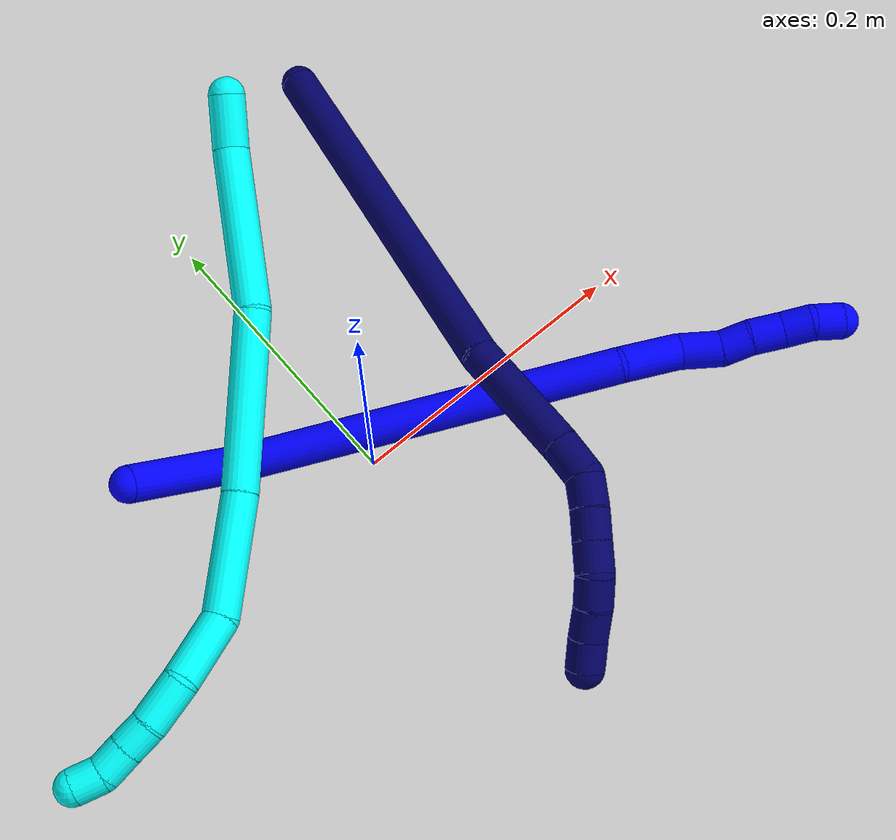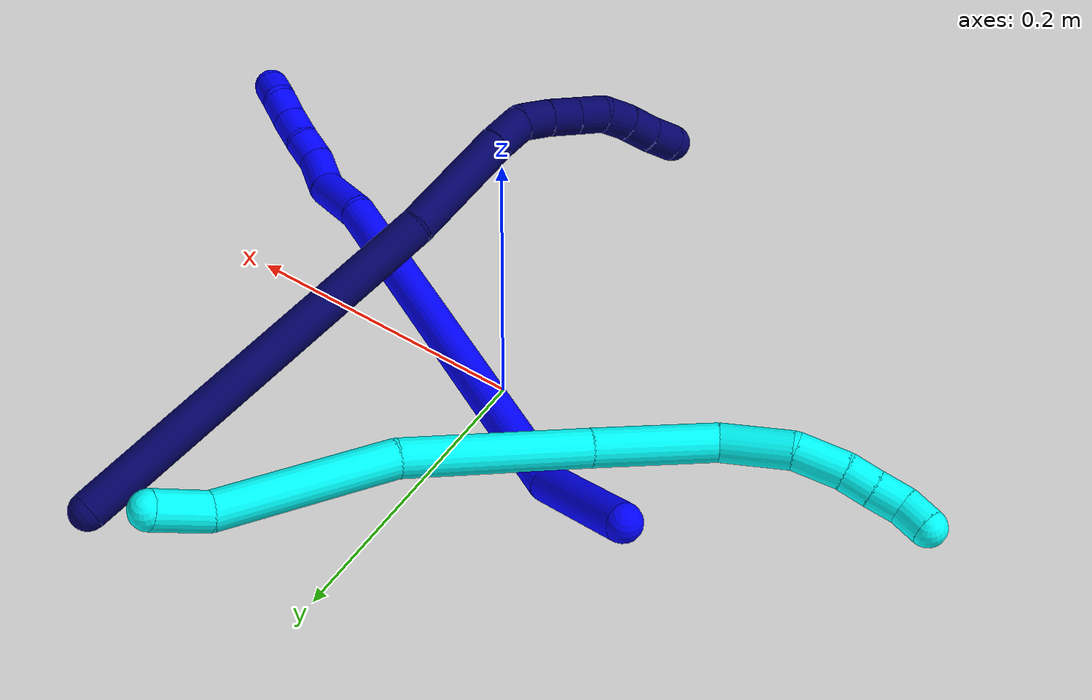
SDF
<sdf version="1.7">
 <world name="default">
  <model name="1">
   <static>0</static>
   <link name="1">
    <collision name="collision-cylinder-e_1_1_4">
     <pose>0.028472 -0.011102 -0.025605 2.73249 0.7954 2.22417</pose>
     <geometry><cylinder><radius>0.0125</radius><length>0.079738</length></cylinder></geometry>
     <surface>
      <friction><ode><mu>1.16</mu><mu2>1.16</mu2><slip1>0</slip1><slip2>0</slip2></ode></friction>
      <contact><ode><kp>1e+06</kp><kd>1</kd><max_vel>0</max_vel><min_depth>0.001</min_depth></ode></contact>
     </surface>
    </collision>
    <visual name="visual-cylinder-e_1_1_4">
     <pose>0.028472 -0.011102 -0.025605 2.73249 0.7954 2.22417</pose>
     <geometry><cylinder><radius>0.0125</radius><length>0.079738</length></cylinder></geometry>
     <material><ambient>0 0 1 1</ambient></material>
    </visual>
    <collision name="collision-cylinder-e_2_4_5">
     <pose>0.171823 -0.080918 -0.075096 1.95716 1.06659 1.44048</pose>
     <geometry><cylinder><radius>0.0125</radius><length>0.262411</length></cylinder></geometry>
     <surface>
      <friction><ode><mu>1.16</mu><mu2>1.16</mu2><slip1>0</slip1><slip2>0</slip2></ode></friction>
      <contact><ode><kp>1e+06</kp><kd>1</kd><max_vel>0</max_vel><min_depth>0.001</min_depth></ode></contact>
     </surface>
    </collision>
    <visual name="visual-cylinder-e_2_4_5">
     <pose>0.171823 -0.080918 -0.075096 1.95716 1.06659 1.44048</pose>
     <geometry><cylinder><radius>0.0125</radius><length>0.262411</length></cylinder></geometry>
     <material><ambient>0 0 1 1</ambient></material>
    </visual>
    <collision name="collision-cylinder-e_3_5_6">
     <pose>0.304836 -0.147415 -0.109065 2.48422 0.958458 1.97995</pose>
     <geometry><cylinder><radius>0.0125</radius><length>0.044323</length></cylinder></geometry>
     <surface>
      <friction><ode><mu>1.16</mu><mu2>1.16</mu2><slip1>0</slip1><slip2>0</slip2></ode></friction>
      <contact><ode><kp>1e+06</kp><kd>1</kd><max_vel>0</max_vel><min_depth>0.001</min_depth></ode></contact>
     </surface>
    </collision>
    <visual name="visual-cylinder-e_3_5_6">
     <pose>0.304836 -0.147415 -0.109065 2.48422 0.958458 1.97995</pose>
     <geometry><cylinder><radius>0.0125</radius><length>0.044323</length></cylinder></geometry>
     <material><ambient>0 0 1 1</ambient></material>
    </visual>
    <collision name="collision-cylinder-e_4_6_7">
     <pose>0.334343 -0.164205 -0.121771 1.85416 0.88107 1.12193</pose>
     <geometry><cylinder><radius>0.0125</radius><length>0.029482</length></cylinder></geometry>
     <surface>
      <friction><ode><mu>1.16</mu><mu2>1.16</mu2><slip1>0</slip1><slip2>0</slip2></ode></friction>
      <contact><ode><kp>1e+06</kp><kd>1</kd><max_vel>0</max_vel><min_depth>0.001</min_depth></ode></contact>
     </surface>
    </collision>
    <visual name="visual-cylinder-e_4_6_7">
     <pose>0.334343 -0.164205 -0.121771 1.85416 0.88107 1.12193</pose>
     <geometry><cylinder><radius>0.0125</radius><length>0.029482</length></cylinder></geometry>
     <material><ambient>0 0 1 1</ambient></material>
    </visual>
    <collision name="collision-cylinder-e_5_7_8">
     <pose>0.355304 -0.177204 -0.124596 1.6213 1.17583 1.2229</pose>
     <geometry><cylinder><radius>0.0125</radius><length>0.020779</length></cylinder></geometry>
     <surface>
      <friction><ode><mu>1.16</mu><mu2>1.16</mu2><slip1>0</slip1><slip2>0</slip2></ode></friction>
      <contact><ode><kp>1e+06</kp><kd>1</kd><max_vel>0</max_vel><min_depth>0.001</min_depth></ode></contact>
     </surface>
    </collision>
    <visual name="visual-cylinder-e_5_7_8">
     <pose>0.355304 -0.177204 -0.124596 1.6213 1.17583 1.2229</pose>
     <geometry><cylinder><radius>0.0125</radius><length>0.020779</length></cylinder></geometry>
     <material><ambient>0 0 1 1</ambient></material>
    </visual>
    <collision name="collision-cylinder-e_6_8_9">
     <pose>0.374611 -0.18667 -0.126417 1.85838 1.03967 1.3075</pose>
     <geometry><cylinder><radius>0.0125</radius><length>0.022541</length></cylinder></geometry>
     <surface>
      <friction><ode><mu>1.16</mu><mu2>1.16</mu2><slip1>0</slip1><slip2>0</slip2></ode></friction>
      <contact><ode><kp>1e+06</kp><kd>1</kd><max_vel>0</max_vel><min_depth>0.001</min_depth></ode></contact>
     </surface>
    </collision>
    <visual name="visual-cylinder-e_6_8_9">
     <pose>0.374611 -0.18667 -0.126417 1.85838 1.03967 1.3075</pose>
     <geometry><cylinder><radius>0.0125</radius><length>0.022541</length></cylinder></geometry>
     <material><ambient>0 0 1 1</ambient></material>
    </visual>
    <collision name="collision-cylinder-e_7_9_10">
     <pose>0.393242 -0.19724 -0.128309 1.62428 1.05084 1.09789</pose>
     <geometry><cylinder><radius>0.0125</radius><length>0.020541</length></cylinder></geometry>
     <surface>
      <friction><ode><mu>1.16</mu><mu2>1.16</mu2><slip1>0</slip1><slip2>0</slip2></ode></friction>
      <contact><ode><kp>1e+06</kp><kd>1</kd><max_vel>0</max_vel><min_depth>0.001</min_depth></ode></contact>
     </surface>
    </collision>
    <visual name="visual-cylinder-e_7_9_10">
     <pose>0.393242 -0.19724 -0.128309 1.62428 1.05084 1.09789</pose>
     <geometry><cylinder><radius>0.0125</radius><length>0.020541</length></cylinder></geometry>
     <material><ambient>0 0 1 1</ambient></material>
    </visual>
    <collision name="collision-cylinder-e_8_10_2">
     <pose>0.409784 -0.207872 -0.132187 2.14798 0.857081 1.40043</pose>
     <geometry><cylinder><radius>0.0125</radius><length>0.020184</length></cylinder></geometry>
     <surface>
      <friction><ode><mu>1.16</mu><mu2>1.16</mu2><slip1>0</slip1><slip2>0</slip2></ode></friction>
      <contact><ode><kp>1e+06</kp><kd>1</kd><max_vel>0</max_vel><min_depth>0.001</min_depth></ode></contact>
     </surface>
    </collision>
    <visual name="visual-cylinder-e_8_10_2">
     <pose>0.409784 -0.207872 -0.132187 2.14798 0.857081 1.40043</pose>
     <geometry><cylinder><radius>0.0125</radius><length>0.020184</length></cylinder></geometry>
     <material><ambient>0 0 1 1</ambient></material>
    </visual>
    <collision name="collision-sphere-2">
     <pose>0.417413 -0.213408 -0.135792 0 -0 0</pose>
     <geometry><sphere><radius>0.0125</radius></sphere></geometry>
     <surface>
      <friction><ode><mu>1.16</mu><mu2>1.16</mu2><slip1>0</slip1><slip2>0</slip2></ode></friction>
      <contact><ode><kp>1e+06</kp><kd>1</kd><max_vel>0</max_vel><min_depth>0.001</min_depth></ode></contact>
     </surface>
    </collision>
    <visual name="visual-sphere-2">
     <pose>0.417413 -0.213408 -0.135792 0 -0 0</pose>
     <geometry><sphere><radius>0.0125</radius></sphere></geometry>
     <material><ambient>0 0 1 1</ambient></material>
    </visual>
    <collision name="collision-sphere-10">
     <pose>0.402155 -0.202335 -0.128581 0 -0 0</pose>
     <geometry><sphere><radius>0.0125</radius></sphere></geometry>
     <surface>
      <friction><ode><mu>1.16</mu><mu2>1.16</mu2><slip1>0</slip1><slip2>0</slip2></ode></friction>
      <contact><ode><kp>1e+06</kp><kd>1</kd><max_vel>0</max_vel><min_depth>0.001</min_depth></ode></contact>
     </surface>
    </collision>
    <visual name="visual-sphere-10">
     <pose>0.402155 -0.202335 -0.128581 0 -0 0</pose>
     <geometry><sphere><radius>0.0125</radius></sphere></geometry>
     <material><ambient>0 0 1 1</ambient></material>
    </visual>
    <collision name="collision-sphere-9">
     <pose>0.384329 -0.192144 -0.128036 0 -0 0</pose>
     <geometry><sphere><radius>0.0125</radius></sphere></geometry>
     <surface>
      <friction><ode><mu>1.16</mu><mu2>1.16</mu2><slip1>0</slip1><slip2>0</slip2></ode></friction>
      <contact><ode><kp>1e+06</kp><kd>1</kd><max_vel>0</max_vel><min_depth>0.001</min_depth></ode></contact>
     </surface>
    </collision>
    <visual name="visual-sphere-9">
     <pose>0.384329 -0.192144 -0.128036 0 -0 0</pose>
     <geometry><sphere><radius>0.0125</radius></sphere></geometry>
     <material><ambient>0 0 1 1</ambient></material>
    </visual>
    <collision name="collision-sphere-4">
     <pose>0.056945 -0.022203 -0.051211 0 -0 0</pose>
     <geometry><sphere><radius>0.0125</radius></sphere></geometry>
     <surface>
      <friction><ode><mu>1.16</mu><mu2>1.16</mu2><slip1>0</slip1><slip2>0</slip2></ode></friction>
      <contact><ode><kp>1e+06</kp><kd>1</kd><max_vel>0</max_vel><min_depth>0.001</min_depth></ode></contact>
     </surface>
    </collision>
    <visual name="visual-sphere-4">
     <pose>0.056945 -0.022203 -0.051211 0 -0 0</pose>
     <geometry><sphere><radius>0.0125</radius></sphere></geometry>
     <material><ambient>0 0 1 1</ambient></material>
    </visual>
    <collision name="collision-sphere-1">
     <geometry><sphere><radius>0.0125</radius></sphere></geometry>
     <surface>
      <friction><ode><mu>1.16</mu><mu2>1.16</mu2><slip1>0</slip1><slip2>0</slip2></ode></friction>
      <contact><ode><kp>1e+06</kp><kd>1</kd><max_vel>0</max_vel><min_depth>0.001</min_depth></ode></contact>
     </surface>
    </collision>
    <visual name="visual-sphere-1">
     <geometry><sphere><radius>0.0125</radius></sphere></geometry>
     <material><ambient>0 0 1 1</ambient></material>
    </visual>
    <collision name="collision-sphere-8">
     <pose>0.364893 -0.181196 -0.124798 0 -0 0</pose>
     <geometry><sphere><radius>0.0125</radius></sphere></geometry>
     <surface>
      <friction><ode><mu>1.16</mu><mu2>1.16</mu2><slip1>0</slip1><slip2>0</slip2></ode></friction>
      <contact><ode><kp>1e+06</kp><kd>1</kd><max_vel>0</max_vel><min_depth>0.001</min_depth></ode></contact>
     </surface>
    </collision>
    <visual name="visual-sphere-8">
     <pose>0.364893 -0.181196 -0.124798 0 -0 0</pose>
     <geometry><sphere><radius>0.0125</radius></sphere></geometry>
     <material><ambient>0 0 1 1</ambient></material>
    </visual>
    <collision name="collision-sphere-5">
     <pose>0.286701 -0.139632 -0.098982 0 -0 0</pose>
     <geometry><sphere><radius>0.0125</radius></sphere></geometry>
     <surface>
      <friction><ode><mu>1.16</mu><mu2>1.16</mu2><slip1>0</slip1><slip2>0</slip2></ode></friction>
      <contact><ode><kp>1e+06</kp><kd>1</kd><max_vel>0</max_vel><min_depth>0.001</min_depth></ode></contact>
     </surface>
    </collision>
    <visual name="visual-sphere-5">
     <pose>0.286701 -0.139632 -0.098982 0 -0 0</pose>
     <geometry><sphere><radius>0.0125</radius></sphere></geometry>
     <material><ambient>0 0 1 1</ambient></material>
    </visual>
    <collision name="collision-sphere-6">
     <pose>0.322971 -0.155199 -0.119149 0 -0 0</pose>
     <geometry><sphere><radius>0.0125</radius></sphere></geometry>
     <surface>
      <friction><ode><mu>1.16</mu><mu2>1.16</mu2><slip1>0</slip1><slip2>0</slip2></ode></friction>
      <contact><ode><kp>1e+06</kp><kd>1</kd><max_vel>0</max_vel><min_depth>0.001</min_depth></ode></contact>
     </surface>
    </collision>
    <visual name="visual-sphere-6">
     <pose>0.322971 -0.155199 -0.119149 0 -0 0</pose>
     <geometry><sphere><radius>0.0125</radius></sphere></geometry>
     <material><ambient>0 0 1 1</ambient></material>
    </visual>
    <collision name="collision-sphere-7">
     <pose>0.345714 -0.173211 -0.124394 0 -0 0</pose>
     <geometry><sphere><radius>0.0125</radius></sphere></geometry>
     <surface>
      <friction><ode><mu>1.16</mu><mu2>1.16</mu2><slip1>0</slip1><slip2>0</slip2></ode></friction>
      <contact><ode><kp>1e+06</kp><kd>1</kd><max_vel>0</max_vel><min_depth>0.001</min_depth></ode></contact>
     </surface>
    </collision>
    <visual name="visual-sphere-7">
     <pose>0.345714 -0.173211 -0.124394 0 -0 0</pose>
     <geometry><sphere><radius>0.0125</radius></sphere></geometry>
     <material><ambient>0 0 1 1</ambient></material>
    </visual>
    <inertial>
     <pose>0.205805 -0.099262 -0.081828 0 -0 0</pose>
     <mass>0.5</mass>
     <inertia>
      <ixx>0.000869</ixx>
      <ixy>0</ixy>
      <ixz>0</ixz>
      <iyy>0.001938</iyy>
      <iyz>0</iyz>
      <izz>-0.000686</izz>
     </inertia>
    </inertial>
   </link>
   <pose>-0.138043 0.07645 0.047238 -0.023539 -0.238934 0.01699</pose>
  </model>
  <model name="3">
   <static>0</static>
   <link name="3">
    <collision name="collision-cylinder-e_1_1_4">
     <pose>-0.015244 0.002353 0.010815 -0.21422 -0.942822 0.109507</pose>
     <geometry><cylinder><radius>0.0125</radius><length>0.037676</length></cylinder></geometry>
     <surface>
      <friction><ode><mu>1.16</mu><mu2>1.16</mu2><slip1>0</slip1><slip2>0</slip2></ode></friction>
      <contact><ode><kp>1e+06</kp><kd>1</kd><max_vel>0</max_vel><min_depth>0.001</min_depth></ode></contact>
     </surface>
    </collision>
    <visual name="visual-cylinder-e_1_1_4">
     <pose>-0.015244 0.002353 0.010815 -0.21422 -0.942822 0.109507</pose>
     <geometry><cylinder><radius>0.0125</radius><length>0.037676</length></cylinder></geometry>
     <material><ambient>0.003922 1 0.996078 1</ambient></material>
    </visual>
    <collision name="collision-cylinder-e_2_4_5">
     <pose>-0.083973 0.022223 0.036439 -0.868935 -1.16564 0.593718</pose>
     <geometry><cylinder><radius>0.0125</radius><length>0.116393</length></cylinder></geometry>
     <surface>
      <friction><ode><mu>1.16</mu><mu2>1.16</mu2><slip1>0</slip1><slip2>0</slip2></ode></friction>
      <contact><ode><kp>1e+06</kp><kd>1</kd><max_vel>0</max_vel><min_depth>0.001</min_depth></ode></contact>
     </surface>
    </collision>
    <visual name="visual-cylinder-e_2_4_5">
     <pose>-0.083973 0.022223 0.036439 -0.868935 -1.16564 0.593718</pose>
     <geometry><cylinder><radius>0.0125</radius><length>0.116393</length></cylinder></geometry>
     <material><ambient>0.003922 1 0.996078 1</ambient></material>
    </visual>
    <collision name="collision-cylinder-e_3_5_6">
     <pose>-0.195268 0.044955 0.069917 -0.27242 -1.2473 0.196574</pose>
     <geometry><cylinder><radius>0.0125</radius><length>0.121946</length></cylinder></geometry>
     <surface>
      <friction><ode><mu>1.16</mu><mu2>1.16</mu2><slip1>0</slip1><slip2>0</slip2></ode></friction>
      <contact><ode><kp>1e+06</kp><kd>1</kd><max_vel>0</max_vel><min_depth>0.001</min_depth></ode></contact>
     </surface>
    </collision>
    <visual name="visual-cylinder-e_3_5_6">
     <pose>-0.195268 0.044955 0.069917 -0.27242 -1.2473 0.196574</pose>
     <geometry><cylinder><radius>0.0125</radius><length>0.121946</length></cylinder></geometry>
     <material><ambient>0.003922 1 0.996078 1</ambient></material>
    </visual>
    <collision name="collision-cylinder-e_4_6_7">
     <pose>-0.293122 0.051406 0.097575 -0.136707 -1.34794 0.109254</pose>
     <geometry><cylinder><radius>0.0125</radius><length>0.082118</length></cylinder></geometry>
     <surface>
      <friction><ode><mu>1.16</mu><mu2>1.16</mu2><slip1>0</slip1><slip2>0</slip2></ode></friction>
      <contact><ode><kp>1e+06</kp><kd>1</kd><max_vel>0</max_vel><min_depth>0.001</min_depth></ode></contact>
     </surface>
    </collision>
    <visual name="visual-cylinder-e_4_6_7">
     <pose>-0.293122 0.051406 0.097575 -0.136707 -1.34794 0.109254</pose>
     <geometry><cylinder><radius>0.0125</radius><length>0.082118</length></cylinder></geometry>
     <material><ambient>0.003922 1 0.996078 1</ambient></material>
    </visual>
    <collision name="collision-cylinder-e_5_7_8">
     <pose>-0.355886 0.046091 0.104663 1.85334 -1.27909 -1.56124</pose>
     <geometry><cylinder><radius>0.0125</radius><length>0.047447</length></cylinder></geometry>
     <surface>
      <friction><ode><mu>1.16</mu><mu2>1.16</mu2><slip1>0</slip1><slip2>0</slip2></ode></friction>
      <contact><ode><kp>1e+06</kp><kd>1</kd><max_vel>0</max_vel><min_depth>0.001</min_depth></ode></contact>
     </surface>
    </collision>
    <visual name="visual-cylinder-e_5_7_8">
     <pose>-0.355886 0.046091 0.104663 1.85334 -1.27909 -1.56124</pose>
     <geometry><cylinder><radius>0.0125</radius><length>0.047447</length></cylinder></geometry>
     <material><ambient>0.003922 1 0.996078 1</ambient></material>
    </visual>
    <collision name="collision-cylinder-e_6_8_9">
     <pose>-0.393099 0.031977 0.105384 1.2369 -1.06613 -0.795015</pose>
     <geometry><cylinder><radius>0.0125</radius><length>0.033111</length></cylinder></geometry>
     <surface>
      <friction><ode><mu>1.16</mu><mu2>1.16</mu2><slip1>0</slip1><slip2>0</slip2></ode></friction>
      <contact><ode><kp>1e+06</kp><kd>1</kd><max_vel>0</max_vel><min_depth>0.001</min_depth></ode></contact>
     </surface>
    </collision>
    <visual name="visual-cylinder-e_6_8_9">
     <pose>-0.393099 0.031977 0.105384 1.2369 -1.06613 -0.795015</pose>
     <geometry><cylinder><radius>0.0125</radius><length>0.033111</length></cylinder></geometry>
     <material><ambient>0.003922 1 0.996078 1</ambient></material>
    </visual>
    <collision name="collision-cylinder-e_7_9_10">
     <pose>-0.41547 0.018361 0.109957 1.25923 -0.891734 -0.670164</pose>
     <geometry><cylinder><radius>0.0125</radius><length>0.020251</length></cylinder></geometry>
     <surface>
      <friction><ode><mu>1.16</mu><mu2>1.16</mu2><slip1>0</slip1><slip2>0</slip2></ode></friction>
      <contact><ode><kp>1e+06</kp><kd>1</kd><max_vel>0</max_vel><min_depth>0.001</min_depth></ode></contact>
     </surface>
    </collision>
    <visual name="visual-cylinder-e_7_9_10">
     <pose>-0.41547 0.018361 0.109957 1.25923 -0.891734 -0.670164</pose>
     <geometry><cylinder><radius>0.0125</radius><length>0.020251</length></cylinder></geometry>
     <material><ambient>0.003922 1 0.996078 1</ambient></material>
    </visual>
    <collision name="collision-cylinder-e_8_10_11">
     <pose>-0.431703 0.006329 0.1138 1.26415 -0.926878 -0.70164</pose>
     <geometry><cylinder><radius>0.0125</radius><length>0.020891</length></cylinder></geometry>
     <surface>
      <friction><ode><mu>1.16</mu><mu2>1.16</mu2><slip1>0</slip1><slip2>0</slip2></ode></friction>
      <contact><ode><kp>1e+06</kp><kd>1</kd><max_vel>0</max_vel><min_depth>0.001</min_depth></ode></contact>
     </surface>
    </collision>
    <visual name="visual-cylinder-e_8_10_11">
     <pose>-0.431703 0.006329 0.1138 1.26415 -0.926878 -0.70164</pose>
     <geometry><cylinder><radius>0.0125</radius><length>0.020891</length></cylinder></geometry>
     <material><ambient>0.003922 1 0.996078 1</ambient></material>
    </visual>
    <collision name="collision-cylinder-e_9_11_2">
     <pose>-0.445879 -0.007862 0.115111 1.6415 -0.615456 -0.657499</pose>
     <geometry><cylinder><radius>0.0125</radius><length>0.020168</length></cylinder></geometry>
     <surface>
      <friction><ode><mu>1.16</mu><mu2>1.16</mu2><slip1>0</slip1><slip2>0</slip2></ode></friction>
      <contact><ode><kp>1e+06</kp><kd>1</kd><max_vel>0</max_vel><min_depth>0.001</min_depth></ode></contact>
     </surface>
    </collision>
    <visual name="visual-cylinder-e_9_11_2">
     <pose>-0.445879 -0.007862 0.115111 1.6415 -0.615456 -0.657499</pose>
     <geometry><cylinder><radius>0.0125</radius><length>0.020168</length></cylinder></geometry>
     <material><ambient>0.003922 1 0.996078 1</ambient></material>
    </visual>
    <collision name="collision-sphere-2">
     <pose>-0.4517 -0.016075 0.114529 0 -0 0</pose>
     <geometry><sphere><radius>0.0125</radius></sphere></geometry>
     <surface>
      <friction><ode><mu>1.16</mu><mu2>1.16</mu2><slip1>0</slip1><slip2>0</slip2></ode></friction>
      <contact><ode><kp>1e+06</kp><kd>1</kd><max_vel>0</max_vel><min_depth>0.001</min_depth></ode></contact>
     </surface>
    </collision>
    <visual name="visual-sphere-2">
     <pose>-0.4517 -0.016075 0.114529 0 -0 0</pose>
     <geometry><sphere><radius>0.0125</radius></sphere></geometry>
     <material><ambient>0.003922 1 0.996078 1</ambient></material>
    </visual>
    <collision name="collision-sphere-11">
     <pose>-0.440057 0.000351 0.115692 0 -0 0</pose>
     <geometry><sphere><radius>0.0125</radius></sphere></geometry>
     <surface>
      <friction><ode><mu>1.16</mu><mu2>1.16</mu2><slip1>0</slip1><slip2>0</slip2></ode></friction>
      <contact><ode><kp>1e+06</kp><kd>1</kd><max_vel>0</max_vel><min_depth>0.001</min_depth></ode></contact>
     </surface>
    </collision>
    <visual name="visual-sphere-11">
     <pose>-0.440057 0.000351 0.115692 0 -0 0</pose>
     <geometry><sphere><radius>0.0125</radius></sphere></geometry>
     <material><ambient>0.003922 1 0.996078 1</ambient></material>
    </visual>
    <collision name="collision-sphere-10">
     <pose>-0.423349 0.012307 0.111907 0 -0 0</pose>
     <geometry><sphere><radius>0.0125</radius></sphere></geometry>
     <surface>
      <friction><ode><mu>1.16</mu><mu2>1.16</mu2><slip1>0</slip1><slip2>0</slip2></ode></friction>
      <contact><ode><kp>1e+06</kp><kd>1</kd><max_vel>0</max_vel><min_depth>0.001</min_depth></ode></contact>
     </surface>
    </collision>
    <visual name="visual-sphere-10">
     <pose>-0.423349 0.012307 0.111907 0 -0 0</pose>
     <geometry><sphere><radius>0.0125</radius></sphere></geometry>
     <material><ambient>0.003922 1 0.996078 1</ambient></material>
    </visual>
    <collision name="collision-sphere-9">
     <pose>-0.407591 0.024414 0.108008 0 -0 0</pose>
     <geometry><sphere><radius>0.0125</radius></sphere></geometry>
     <surface>
      <friction><ode><mu>1.16</mu><mu2>1.16</mu2><slip1>0</slip1><slip2>0</slip2></ode></friction>
      <contact><ode><kp>1e+06</kp><kd>1</kd><max_vel>0</max_vel><min_depth>0.001</min_depth></ode></contact>
     </surface>
    </collision>
    <visual name="visual-sphere-9">
     <pose>-0.407591 0.024414 0.108008 0 -0 0</pose>
     <geometry><sphere><radius>0.0125</radius></sphere></geometry>
     <material><ambient>0.003922 1 0.996078 1</ambient></material>
    </visual>
    <collision name="collision-sphere-4">
     <pose>-0.030488 0.004706 0.021629 0 -0 0</pose>
     <geometry><sphere><radius>0.0125</radius></sphere></geometry>
     <surface>
      <friction><ode><mu>1.16</mu><mu2>1.16</mu2><slip1>0</slip1><slip2>0</slip2></ode></friction>
      <contact><ode><kp>1e+06</kp><kd>1</kd><max_vel>0</max_vel><min_depth>0.001</min_depth></ode></contact>
     </surface>
    </collision>
    <visual name="visual-sphere-4">
     <pose>-0.030488 0.004706 0.021629 0 -0 0</pose>
     <geometry><sphere><radius>0.0125</radius></sphere></geometry>
     <material><ambient>0.003922 1 0.996078 1</ambient></material>
    </visual>
    <collision name="collision-sphere-1">
     <geometry><sphere><radius>0.0125</radius></sphere></geometry>
     <surface>
      <friction><ode><mu>1.16</mu><mu2>1.16</mu2><slip1>0</slip1><slip2>0</slip2></ode></friction>
      <contact><ode><kp>1e+06</kp><kd>1</kd><max_vel>0</max_vel><min_depth>0.001</min_depth></ode></contact>
     </surface>
    </collision>
    <visual name="visual-sphere-1">
     <geometry><sphere><radius>0.0125</radius></sphere></geometry>
     <material><ambient>0.003922 1 0.996078 1</ambient></material>
    </visual>
    <collision name="collision-sphere-8">
     <pose>-0.378608 0.039539 0.102761 0 -0 0</pose>
     <geometry><sphere><radius>0.0125</radius></sphere></geometry>
     <surface>
      <friction><ode><mu>1.16</mu><mu2>1.16</mu2><slip1>0</slip1><slip2>0</slip2></ode></friction>
      <contact><ode><kp>1e+06</kp><kd>1</kd><max_vel>0</max_vel><min_depth>0.001</min_depth></ode></contact>
     </surface>
    </collision>
    <visual name="visual-sphere-8">
     <pose>-0.378608 0.039539 0.102761 0 -0 0</pose>
     <geometry><sphere><radius>0.0125</radius></sphere></geometry>
     <material><ambient>0.003922 1 0.996078 1</ambient></material>
    </visual>
    <collision name="collision-sphere-5">
     <pose>-0.137458 0.03974 0.051249 0 -0 0</pose>
     <geometry><sphere><radius>0.0125</radius></sphere></geometry>
     <surface>
      <friction><ode><mu>1.16</mu><mu2>1.16</mu2><slip1>0</slip1><slip2>0</slip2></ode></friction>
      <contact><ode><kp>1e+06</kp><kd>1</kd><max_vel>0</max_vel><min_depth>0.001</min_depth></ode></contact>
     </surface>
    </collision>
    <visual name="visual-sphere-5">
     <pose>-0.137458 0.03974 0.051249 0 -0 0</pose>
     <geometry><sphere><radius>0.0125</radius></sphere></geometry>
     <material><ambient>0.003922 1 0.996078 1</ambient></material>
    </visual>
    <collision name="collision-sphere-6">
     <pose>-0.253078 0.05017 0.088585 0 -0 0</pose>
     <geometry><sphere><radius>0.0125</radius></sphere></geometry>
     <surface>
      <friction><ode><mu>1.16</mu><mu2>1.16</mu2><slip1>0</slip1><slip2>0</slip2></ode></friction>
      <contact><ode><kp>1e+06</kp><kd>1</kd><max_vel>0</max_vel><min_depth>0.001</min_depth></ode></contact>
     </surface>
    </collision>
    <visual name="visual-sphere-6">
     <pose>-0.253078 0.05017 0.088585 0 -0 0</pose>
     <geometry><sphere><radius>0.0125</radius></sphere></geometry>
     <material><ambient>0.003922 1 0.996078 1</ambient></material>
    </visual>
    <collision name="collision-sphere-7">
     <pose>-0.333165 0.052643 0.106565 0 -0 0</pose>
     <geometry><sphere><radius>0.0125</radius></sphere></geometry>
     <surface>
      <friction><ode><mu>1.16</mu><mu2>1.16</mu2><slip1>0</slip1><slip2>0</slip2></ode></friction>
      <contact><ode><kp>1e+06</kp><kd>1</kd><max_vel>0</max_vel><min_depth>0.001</min_depth></ode></contact>
     </surface>
    </collision>
    <visual name="visual-sphere-7">
     <pose>-0.333165 0.052643 0.106565 0 -0 0</pose>
     <geometry><sphere><radius>0.0125</radius></sphere></geometry>
     <material><ambient>0.003922 1 0.996078 1</ambient></material>
    </visual>
    <inertial>
     <pose>-0.229114 0.031939 0.073137 0 -0 0</pose>
     <mass>0.5</mass>
     <inertia>
      <ixx>0.000111</ixx>
      <ixy>0</ixy>
      <ixz>0</ixz>
      <iyy>0.000386</iyy>
      <iyz>0</iyz>
      <izz>0.000303</izz>
     </inertia>
    </inertial>
   </link>
   <pose>0.076587 0.243336 0.082083 2.92834 0.099369 0.66462</pose>
  </model>
  <model name="7">
   <static>0</static>
   <link name="7">
    <collision name="collision-cylinder-e_1_1_4">
     <pose>-0.009213 0.003211 -0.135042 -3.11782 -0.0681 2.47013</pose>
     <geometry><cylinder><radius>0.0125</radius><length>0.270789</length></cylinder></geometry>
     <surface>
      <friction><ode><mu>1.16</mu><mu2>1.16</mu2><slip1>0</slip1><slip2>0</slip2></ode></friction>
      <contact><ode><kp>1e+06</kp><kd>1</kd><max_vel>0</max_vel><min_depth>0.001</min_depth></ode></contact>
     </surface>
    </collision>
    <visual name="visual-cylinder-e_1_1_4">
     <pose>-0.009213 0.003211 -0.135042 -3.11782 -0.0681 2.47013</pose>
     <geometry><cylinder><radius>0.0125</radius><length>0.270789</length></cylinder></geometry>
     <material><ambient>0.003922 0 0.403922 1</ambient></material>
    </visual>
    <collision name="collision-cylinder-e_2_4_5">
     <pose>-0.026466 0.011869 -0.310394 -3.00725 -0.195141 1.93731</pose>
     <geometry><cylinder><radius>0.0125</radius><length>0.082925</length></cylinder></geometry>
     <surface>
      <friction><ode><mu>1.16</mu><mu2>1.16</mu2><slip1>0</slip1><slip2>0</slip2></ode></friction>
      <contact><ode><kp>1e+06</kp><kd>1</kd><max_vel>0</max_vel><min_depth>0.001</min_depth></ode></contact>
     </surface>
    </collision>
    <visual name="visual-cylinder-e_2_4_5">
     <pose>-0.026466 0.011869 -0.310394 -3.00725 -0.195141 1.93731</pose>
     <geometry><cylinder><radius>0.0125</radius><length>0.082925</length></cylinder></geometry>
     <material><ambient>0.003922 0 0.403922 1</ambient></material>
    </visual>
    <collision name="collision-cylinder-e_3_5_6">
     <pose>-0.037512 0.018166 -0.363111 -3.0733 -0.237174 2.5832</pose>
     <geometry><cylinder><radius>0.0125</radius><length>0.025592</length></cylinder></geometry>
     <surface>
      <friction><ode><mu>1.16</mu><mu2>1.16</mu2><slip1>0</slip1><slip2>0</slip2></ode></friction>
      <contact><ode><kp>1e+06</kp><kd>1</kd><max_vel>0</max_vel><min_depth>0.001</min_depth></ode></contact>
     </surface>
    </collision>
    <visual name="visual-cylinder-e_3_5_6">
     <pose>-0.037512 0.018166 -0.363111 -3.0733 -0.237174 2.5832</pose>
     <geometry><cylinder><radius>0.0125</radius><length>0.025592</length></cylinder></geometry>
     <material><ambient>0.003922 0 0.403922 1</ambient></material>
    </visual>
    <collision name="collision-cylinder-e_4_6_7">
     <pose>-0.042931 0.014602 -0.384495 2.68465 -0.236687 -0.945333</pose>
     <geometry><cylinder><radius>0.0125</radius><length>0.020577</length></cylinder></geometry>
     <surface>
      <friction><ode><mu>1.16</mu><mu2>1.16</mu2><slip1>0</slip1><slip2>0</slip2></ode></friction>
      <contact><ode><kp>1e+06</kp><kd>1</kd><max_vel>0</max_vel><min_depth>0.001</min_depth></ode></contact>
     </surface>
    </collision>
    <visual name="visual-cylinder-e_4_6_7">
     <pose>-0.042931 0.014602 -0.384495 2.68465 -0.236687 -0.945333</pose>
     <geometry><cylinder><radius>0.0125</radius><length>0.020577</length></cylinder></geometry>
     <material><ambient>0.003922 0 0.403922 1</ambient></material>
    </visual>
    <collision name="collision-cylinder-e_5_7_8">
     <pose>-0.047815 0.005108 -0.401761 2.59173 -0.248868 -0.834754</pose>
     <geometry><cylinder><radius>0.0125</radius><length>0.020063</length></cylinder></geometry>
     <surface>
      <friction><ode><mu>1.16</mu><mu2>1.16</mu2><slip1>0</slip1><slip2>0</slip2></ode></friction>
      <contact><ode><kp>1e+06</kp><kd>1</kd><max_vel>0</max_vel><min_depth>0.001</min_depth></ode></contact>
     </surface>
    </collision>
    <visual name="visual-cylinder-e_5_7_8">
     <pose>-0.047815 0.005108 -0.401761 2.59173 -0.248868 -0.834754</pose>
     <geometry><cylinder><radius>0.0125</radius><length>0.020063</length></cylinder></geometry>
     <material><ambient>0.003922 0 0.403922 1</ambient></material>
    </visual>
    <collision name="collision-cylinder-e_6_8_9">
     <pose>-0.052796 -0.00499 -0.418336 2.59711 -0.253551 -0.856597</pose>
     <geometry><cylinder><radius>0.0125</radius><length>0.020013</length></cylinder></geometry>
     <surface>
      <friction><ode><mu>1.16</mu><mu2>1.16</mu2><slip1>0</slip1><slip2>0</slip2></ode></friction>
      <contact><ode><kp>1e+06</kp><kd>1</kd><max_vel>0</max_vel><min_depth>0.001</min_depth></ode></contact>
     </surface>
    </collision>
    <visual name="visual-cylinder-e_6_8_9">
     <pose>-0.052796 -0.00499 -0.418336 2.59711 -0.253551 -0.856597</pose>
     <geometry><cylinder><radius>0.0125</radius><length>0.020013</length></cylinder></geometry>
     <material><ambient>0.003922 0 0.403922 1</ambient></material>
    </visual>
    <collision name="collision-cylinder-e_7_9_10">
     <pose>-0.060123 -0.016579 -0.432446 2.2959 -0.501747 -1.03539</pose>
     <geometry><cylinder><radius>0.0125</radius><length>0.020032</length></cylinder></geometry>
     <surface>
      <friction><ode><mu>1.16</mu><mu2>1.16</mu2><slip1>0</slip1><slip2>0</slip2></ode></friction>
      <contact><ode><kp>1e+06</kp><kd>1</kd><max_vel>0</max_vel><min_depth>0.001</min_depth></ode></contact>
     </surface>
    </collision>
    <visual name="visual-cylinder-e_7_9_10">
     <pose>-0.060123 -0.016579 -0.432446 2.2959 -0.501747 -1.03539</pose>
     <geometry><cylinder><radius>0.0125</radius><length>0.020032</length></cylinder></geometry>
     <material><ambient>0.003922 0 0.403922 1</ambient></material>
    </visual>
    <collision name="collision-cylinder-e_8_10_11">
     <pose>-0.069959 -0.030409 -0.442978 2.14629 -0.525717 -0.919789</pose>
     <geometry><cylinder><radius>0.0125</radius><length>0.020003</length></cylinder></geometry>
     <surface>
      <friction><ode><mu>1.16</mu><mu2>1.16</mu2><slip1>0</slip1><slip2>0</slip2></ode></friction>
      <contact><ode><kp>1e+06</kp><kd>1</kd><max_vel>0</max_vel><min_depth>0.001</min_depth></ode></contact>
     </surface>
    </collision>
    <visual name="visual-cylinder-e_8_10_11">
     <pose>-0.069959 -0.030409 -0.442978 2.14629 -0.525717 -0.919789</pose>
     <geometry><cylinder><radius>0.0125</radius><length>0.020003</length></cylinder></geometry>
     <material><ambient>0.003922 0 0.403922 1</ambient></material>
    </visual>
    <collision name="collision-cylinder-e_9_11_2">
     <pose>-0.079772 -0.044546 -0.453141 2.24119 -0.499778 -0.971724</pose>
     <geometry><cylinder><radius>0.0125</radius><length>0.020007</length></cylinder></geometry>
     <surface>
      <friction><ode><mu>1.16</mu><mu2>1.16</mu2><slip1>0</slip1><slip2>0</slip2></ode></friction>
      <contact><ode><kp>1e+06</kp><kd>1</kd><max_vel>0</max_vel><min_depth>0.001</min_depth></ode></contact>
     </surface>
    </collision>
    <visual name="visual-cylinder-e_9_11_2">
     <pose>-0.079772 -0.044546 -0.453141 2.24119 -0.499778 -0.971724</pose>
     <geometry><cylinder><radius>0.0125</radius><length>0.020007</length></cylinder></geometry>
     <material><ambient>0.003922 0 0.403922 1</ambient></material>
    </visual>
    <collision name="collision-sphere-2">
     <pose>-0.084566 -0.051426 -0.458596 0 -0 0</pose>
     <geometry><sphere><radius>0.0125</radius></sphere></geometry>
     <surface>
      <friction><ode><mu>1.16</mu><mu2>1.16</mu2><slip1>0</slip1><slip2>0</slip2></ode></friction>
      <contact><ode><kp>1e+06</kp><kd>1</kd><max_vel>0</max_vel><min_depth>0.001</min_depth></ode></contact>
     </surface>
    </collision>
    <visual name="visual-sphere-2">
     <pose>-0.084566 -0.051426 -0.458596 0 -0 0</pose>
     <geometry><sphere><radius>0.0125</radius></sphere></geometry>
     <material><ambient>0.003922 0 0.403922 1</ambient></material>
    </visual>
    <collision name="collision-sphere-11">
     <pose>-0.074978 -0.037666 -0.447686 0 -0 0</pose>
     <geometry><sphere><radius>0.0125</radius></sphere></geometry>
     <surface>
      <friction><ode><mu>1.16</mu><mu2>1.16</mu2><slip1>0</slip1><slip2>0</slip2></ode></friction>
      <contact><ode><kp>1e+06</kp><kd>1</kd><max_vel>0</max_vel><min_depth>0.001</min_depth></ode></contact>
     </surface>
    </collision>
    <visual name="visual-sphere-11">
     <pose>-0.074978 -0.037666 -0.447686 0 -0 0</pose>
     <geometry><sphere><radius>0.0125</radius></sphere></geometry>
     <material><ambient>0.003922 0 0.403922 1</ambient></material>
    </visual>
    <collision name="collision-sphere-10">
     <pose>-0.06494 -0.023152 -0.43827 0 -0 0</pose>
     <geometry><sphere><radius>0.0125</radius></sphere></geometry>
     <surface>
      <friction><ode><mu>1.16</mu><mu2>1.16</mu2><slip1>0</slip1><slip2>0</slip2></ode></friction>
      <contact><ode><kp>1e+06</kp><kd>1</kd><max_vel>0</max_vel><min_depth>0.001</min_depth></ode></contact>
     </surface>
    </collision>
    <visual name="visual-sphere-10">
     <pose>-0.06494 -0.023152 -0.43827 0 -0 0</pose>
     <geometry><sphere><radius>0.0125</radius></sphere></geometry>
     <material><ambient>0.003922 0 0.403922 1</ambient></material>
    </visual>
    <collision name="collision-sphere-9">
     <pose>-0.055306 -0.010007 -0.426622 0 -0 0</pose>
     <geometry><sphere><radius>0.0125</radius></sphere></geometry>
     <surface>
      <friction><ode><mu>1.16</mu><mu2>1.16</mu2><slip1>0</slip1><slip2>0</slip2></ode></friction>
      <contact><ode><kp>1e+06</kp><kd>1</kd><max_vel>0</max_vel><min_depth>0.001</min_depth></ode></contact>
     </surface>
    </collision>
    <visual name="visual-sphere-9">
     <pose>-0.055306 -0.010007 -0.426622 0 -0 0</pose>
     <geometry><sphere><radius>0.0125</radius></sphere></geometry>
     <material><ambient>0.003922 0 0.403922 1</ambient></material>
    </visual>
    <collision name="collision-sphere-4">
     <pose>-0.018426 0.006421 -0.270085 0 -0 0</pose>
     <geometry><sphere><radius>0.0125</radius></sphere></geometry>
     <surface>
      <friction><ode><mu>1.16</mu><mu2>1.16</mu2><slip1>0</slip1><slip2>0</slip2></ode></friction>
      <contact><ode><kp>1e+06</kp><kd>1</kd><max_vel>0</max_vel><min_depth>0.001</min_depth></ode></contact>
     </surface>
    </collision>
    <visual name="visual-sphere-4">
     <pose>-0.018426 0.006421 -0.270085 0 -0 0</pose>
     <geometry><sphere><radius>0.0125</radius></sphere></geometry>
     <material><ambient>0.003922 0 0.403922 1</ambient></material>
    </visual>
    <collision name="collision-sphere-1">
     <geometry><sphere><radius>0.0125</radius></sphere></geometry>
     <surface>
      <friction><ode><mu>1.16</mu><mu2>1.16</mu2><slip1>0</slip1><slip2>0</slip2></ode></friction>
      <contact><ode><kp>1e+06</kp><kd>1</kd><max_vel>0</max_vel><min_depth>0.001</min_depth></ode></contact>
     </surface>
    </collision>
    <visual name="visual-sphere-1">
     <geometry><sphere><radius>0.0125</radius></sphere></geometry>
     <material><ambient>0.003922 0 0.403922 1</ambient></material>
    </visual>
    <collision name="collision-sphere-8">
     <pose>-0.050286 2.8e-05 -0.41005 0 -0 0</pose>
     <geometry><sphere><radius>0.0125</radius></sphere></geometry>
     <surface>
      <friction><ode><mu>1.16</mu><mu2>1.16</mu2><slip1>0</slip1><slip2>0</slip2></ode></friction>
      <contact><ode><kp>1e+06</kp><kd>1</kd><max_vel>0</max_vel><min_depth>0.001</min_depth></ode></contact>
     </surface>
    </collision>
    <visual name="visual-sphere-8">
     <pose>-0.050286 2.8e-05 -0.41005 0 -0 0</pose>
     <geometry><sphere><radius>0.0125</radius></sphere></geometry>
     <material><ambient>0.003922 0 0.403922 1</ambient></material>
    </visual>
    <collision name="collision-sphere-5">
     <pose>-0.034506 0.017317 -0.350703 0 -0 0</pose>
     <geometry><sphere><radius>0.0125</radius></sphere></geometry>
     <surface>
      <friction><ode><mu>1.16</mu><mu2>1.16</mu2><slip1>0</slip1><slip2>0</slip2></ode></friction>
      <contact><ode><kp>1e+06</kp><kd>1</kd><max_vel>0</max_vel><min_depth>0.001</min_depth></ode></contact>
     </surface>
    </collision>
    <visual name="visual-sphere-5">
     <pose>-0.034506 0.017317 -0.350703 0 -0 0</pose>
     <geometry><sphere><radius>0.0125</radius></sphere></geometry>
     <material><ambient>0.003922 0 0.403922 1</ambient></material>
    </visual>
    <collision name="collision-sphere-6">
     <pose>-0.040519 0.019015 -0.37552 0 -0 0</pose>
     <geometry><sphere><radius>0.0125</radius></sphere></geometry>
     <surface>
      <friction><ode><mu>1.16</mu><mu2>1.16</mu2><slip1>0</slip1><slip2>0</slip2></ode></friction>
      <contact><ode><kp>1e+06</kp><kd>1</kd><max_vel>0</max_vel><min_depth>0.001</min_depth></ode></contact>
     </surface>
    </collision>
    <visual name="visual-sphere-6">
     <pose>-0.040519 0.019015 -0.37552 0 -0 0</pose>
     <geometry><sphere><radius>0.0125</radius></sphere></geometry>
     <material><ambient>0.003922 0 0.403922 1</ambient></material>
    </visual>
    <collision name="collision-sphere-7">
     <pose>-0.045344 0.010189 -0.393471 0 -0 0</pose>
     <geometry><sphere><radius>0.0125</radius></sphere></geometry>
     <surface>
      <friction><ode><mu>1.16</mu><mu2>1.16</mu2><slip1>0</slip1><slip2>0</slip2></ode></friction>
      <contact><ode><kp>1e+06</kp><kd>1</kd><max_vel>0</max_vel><min_depth>0.001</min_depth></ode></contact>
     </surface>
    </collision>
    <visual name="visual-sphere-7">
     <pose>-0.045344 0.010189 -0.393471 0 -0 0</pose>
     <geometry><sphere><radius>0.0125</radius></sphere></geometry>
     <material><ambient>0.003922 0 0.403922 1</ambient></material>
    </visual>
    <inertial>
     <pose>-0.025497 0.00158 -0.245068 0 -0 0</pose>
     <mass>0.5</mass>
     <inertia><ixx>-0.000247</ixx><ixy>0</ixy><ixz>0</ixz><iyy>0.002395</iyy><iyz>0</iyz><izz>5e-05</izz></inertia>
    </inertial>
   </link>
   <pose>0.134018 0.242416 0.036017 2.17096 -1.0842 2.33654</pose>
  </model>
 </world>
</sdf>
